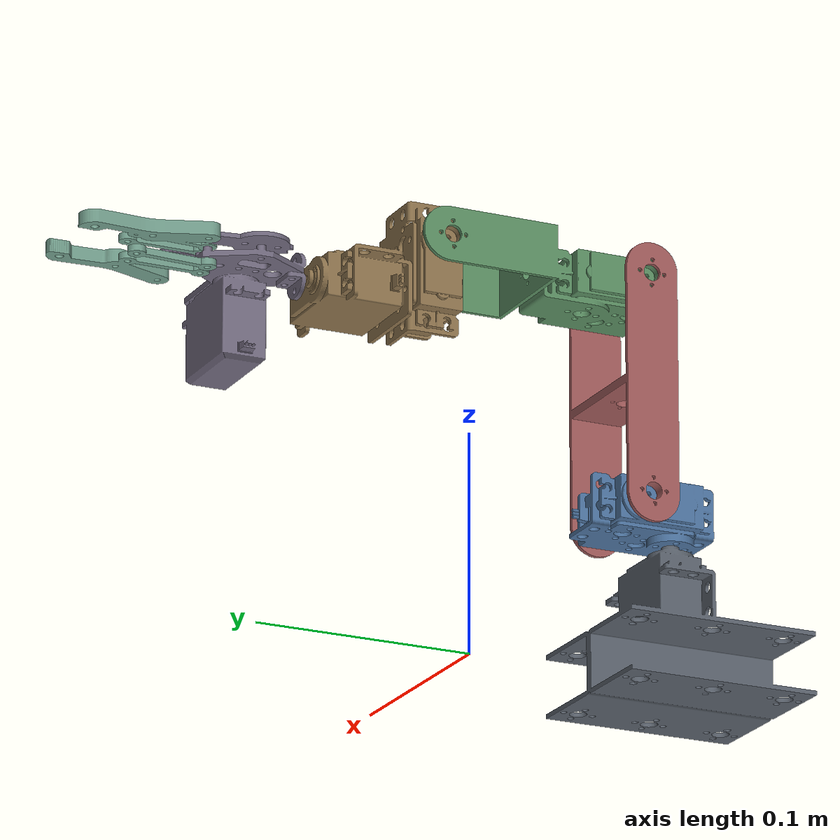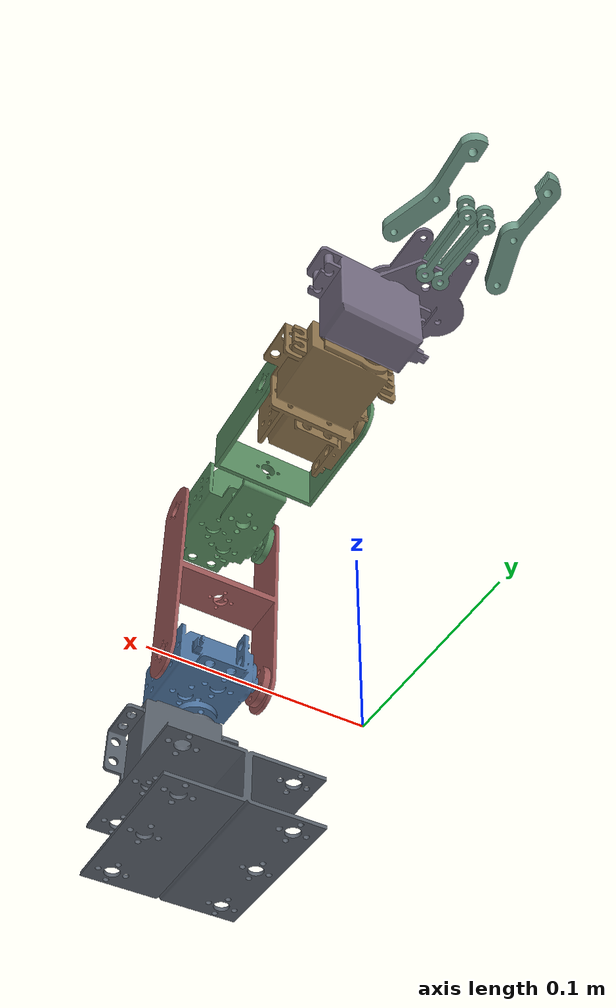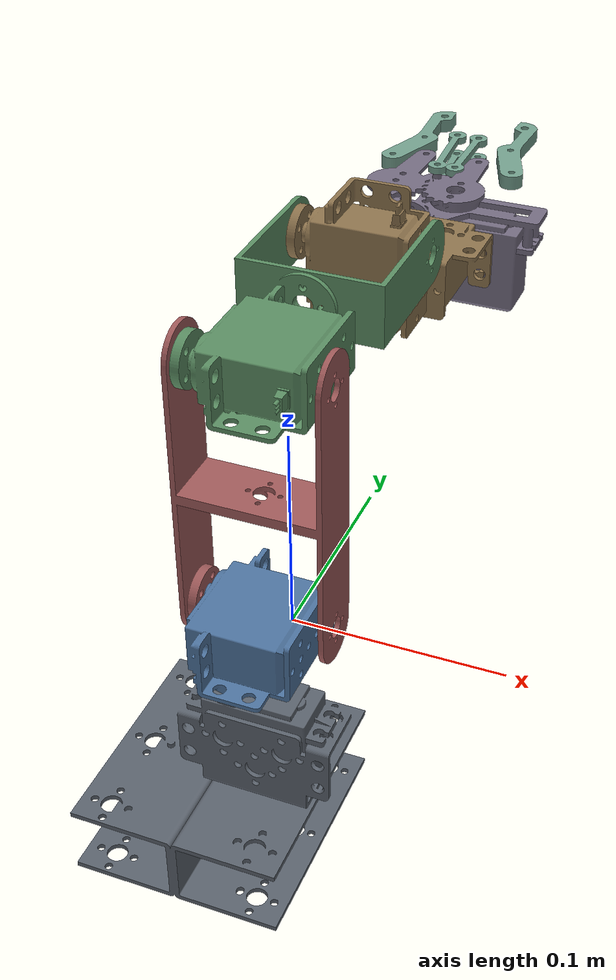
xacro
<?xml version="1.0"?>
<robot name="o5_2_arm" xmlns:xacro="http://www.ros.org/wiki/xacro">

  <!-- 惯量宏。用相对路径 include，这样本文件从任何位置都能单独展开 -->
  <xacro:include filename="inertial_macros.xacro"/>

  <xacro:property name="top_plate_xyz" value=" 0.027037  0.073566  0.111677"/>  <!-- base_plate -> top_plate -->
  <xacro:property name="lower_arm_xyz" value="-0.022766  0.013792 -0.021575"/>  <!-- top_plate  -> lower_arm -->
  <xacro:property name="upper_arm_xyz" value="-0.000001  0.102000  0.000233"/>  <!-- lower_arm  -> upper_arm -->
  <xacro:property name="wrist_xyz"     value="-0.000117  0.001961 -0.097505"/>  <!-- upper_arm  -> wrist -->
  <xacro:property name="claw_base_xyz" value=" 0.023268 -0.021198 -0.060004"/>  <!-- wrist      -> claw_base -->
  <xacro:property name="right_claw_xyz" value="-0.005843  0.006182 -0.082410"/> <!-- claw_base  -> 主动指 -->
  <xacro:property name="left_claw_xyz"  value=" 0.004233  0.006188 -0.082440"/> <!-- claw_base  -> 从动指 -->

  <xacro:property name="top_plate_axis" value="0 1 0"/>   <!-- 底座回转（因整体 +90° about X，等效世界 Z 轴） -->
  <xacro:property name="lower_arm_axis" value="1 0 0"/>
  <xacro:property name="upper_arm_axis" value="-1 0 0"/>  <!-- 与 lower_arm 反向，构成肘部 -->
  <xacro:property name="wrist_axis"     value="1 0 0"/>
  <xacro:property name="claw_base_axis" value="0 0 -1"/>  <!-- 腕部回转 -->
  <!-- 夹爪两指都绕 Y 轴旋转（Y 垂直于「两指分开方向 X」与「手指伸出方向 Z」），
      两指因此都在 XZ 平面内摆动，朝对侧咬合。
      配合 mimic multiplier = -1，两指反向等量转动 = 对称开合。 -->
  <xacro:property name="right_claw_axis" value="0 1 0"/>
  <xacro:property name="left_claw_axis"  value="0 1 0"/>

  <xacro:property name="arm_joint_lower"    value="-1.5708"/>
  <xacro:property name="arm_joint_upper"    value=" 1.5708"/>
  <xacro:property name="arm_joint_effort"   value="10.0"/>
  <xacro:property name="arm_joint_velocity" value="3.0"/>
  <xacro:property name="arm_joint_damping"  value="0.10"/>
  <xacro:property name="arm_joint_friction" value="0.05"/>

  <!-- 夹爪：两个「绕轴旋转」的手指，单位 rad
       注意：这里刻意不用 prismatic（平移）关节，理由见文件末尾「夹爪方案」一节。
       0.0 = 竖直张开位（两指夹持面间距 29.3 mm）
       负方向 = 闭合。限位取 0.90 rad 是算出来的：再转到 0.93 rad 两指面就
       刚好接触，留 ~0.9 mm 余量避免碰撞求解器抖动。 -->
  <xacro:property name="claw_angle_limit" value="0.90"/>
  <xacro:property name="claw_effort"      value="20.0"/>
  <xacro:property name="claw_velocity"    value="0.5"/>

  <!-- base_plate：底板×2 + U 型支架 + 舵机 -->
  <xacro:property name="base_plate_mass" value="0.143933"/>
  <xacro:property name="base_plate_com"  value="0.025064 0.022051 0.112311"/>
  <xacro:property name="base_plate_inertia"
                  value="0.000126612 -0.000019091 -0.000000919 0.000126343 -0.000001582 0.000117666"/>

  <!-- top_plate：U 型支架 + 舵机 + 舵盘 -->
  <xacro:property name="top_plate_mass" value="0.046643"/>
  <xacro:property name="top_plate_com"  value="0.005075 0.011879 -0.011367"/>
  <xacro:property name="top_plate_inertia"
                  value="0.000010852 0.000000018 0.000000001 0.000015620 0.000000108 0.000009424"/>

  <!-- lower_arm：脚板×2 + 舵盘 -->
  <xacro:property name="lower_arm_mass" value="0.046795"/>
  <xacro:property name="lower_arm_com"  value="0.024278 0.050027 0.000189"/>
  <xacro:property name="lower_arm_inertia"
                  value="0.000044988 -0.000001104 -0.000000082 0.000030746 -0.000000095 0.000070850"/>

  <!-- upper_arm：连接件 + U 型支架 + 脚板 + 舵机 + 舵盘 -->
  <xacro:property name="upper_arm_mass" value="0.076498"/>
  <xacro:property name="upper_arm_com"  value="0.026187 -0.001149 -0.029551"/>
  <xacro:property name="upper_arm_inertia"
                  value="0.000075951 0.000000103 -0.000002484 0.000093725 0.000003223 0.000026592"/>

  <!-- wrist：U 型支架×2 + 舵机×2 + 舵盘 -->
  <xacro:property name="wrist_mass" value="0.092393"/>
  <xacro:property name="wrist_com"  value="0.030387 -0.014556 -0.016633"/>
  <xacro:property name="wrist_inertia"
                  value="0.000043585 0.000001605 0.000004130 0.000047614 -0.000006950 0.000029831"/>

  <!-- claw_base：夹爪底座 + 齿轮×2 + 舵机 + 舵盘 + 销 -->
  <xacro:property name="claw_base_mass" value="0.039722"/>
  <xacro:property name="claw_base_com"  value="0.017716 -0.017188 -0.026802"/>
  <xacro:property name="claw_base_inertia"
                  value="0.000010477 0.000002797 -0.000000127 0.000011200 0.000000207 0.000016538"/>

  <!-- 夹爪手指：手指板×2 + 连杆×2 -->
  <xacro:property name="right_claw_mass" value="0.003953"/>
  <xacro:property name="right_claw_com"  value="-0.012800 -0.004503 0.006606"/>
  <xacro:property name="right_claw_inertia"
                  value="0.000001276 -0.000000000 -0.000000131 0.000001545 -0.000000001 0.000000328"/>

  <xacro:property name="left_claw_mass" value="0.003953"/>
  <xacro:property name="left_claw_com"  value="0.013221 -0.004487 0.006543"/>
  <xacro:property name="left_claw_inertia"
                  value="0.000001279 -0.000000000 0.000000108 0.000001525 -0.000000001 0.000000306"/>

  <xacro:property name="right_claw_col_origin" value="-0.015500 -0.004500 -0.013500"/>
  <xacro:property name="left_claw_col_origin"  value=" 0.015700 -0.004500 -0.013500"/>
  <xacro:property name="claw_col_size"         value=" 0.012000  0.012000  0.037000"/>

  <!-- ==========================================================================
       六、材质颜色（RViz 显示用）
       ========================================================================== -->
  <xacro:property name="color_base_plate" value="0.35 0.38 0.42 1.0"/>
  <xacro:property name="color_top_plate"  value="0.30 0.45 0.62 1.0"/>
  <xacro:property name="color_lower_arm"  value="0.62 0.35 0.35 1.0"/>
  <xacro:property name="color_upper_arm"  value="0.35 0.55 0.38 1.0"/>
  <xacro:property name="color_wrist"      value="0.55 0.45 0.30 1.0"/>
  <xacro:property name="color_claw_base"  value="0.45 0.42 0.50 1.0"/>
  <xacro:property name="color_claw"       value="0.45 0.62 0.55 1.0"/>

  <material name="base_plate_color"><color rgba="${color_base_plate}"/></material>
  <material name="top_plate_color"><color rgba="${color_top_plate}"/></material>
  <material name="lower_arm_color"><color rgba="${color_lower_arm}"/></material>
  <material name="upper_arm_color"><color rgba="${color_upper_arm}"/></material>
  <material name="wrist_color"><color rgba="${color_wrist}"/></material>
  <material name="claw_base_color"><color rgba="${color_claw_base}"/></material>
  <material name="claw_color"><color rgba="${color_claw}"/></material>

  <link name="world"/>

  <joint name="world_base_link_joint" type="fixed">
    <parent link="world"/>
    <child  link="base_link"/>
    <origin xyz="0 0 0" rpy="0 0 0"/>
  </joint>

  <link name="base_link"/>

  <joint name="base_plate_joint" type="fixed">
    <parent link="base_link"/>
    <child  link="base_plate"/>
    <origin xyz="0 0 0" rpy="${pi/2} 0 0"/>
  </joint>

  <!-- ==========================================================================
       八、通用宏
       ========================================================================== -->

  <!-- 连杆：mesh 视觉 + mesh 碰撞 + CAD 精确惯量（走 inertial_macros 的 tensor_inertia） -->
  <xacro:macro name="arm_link" params="name mesh_file color mass com inertia">
    <link name="${name}">
      <visual>
        <origin xyz="0 0 0" rpy="0 0 0"/>
        <geometry><mesh filename="package://arm_description/meshes/${mesh_file}"/></geometry>
        <material name="${color}"/>
      </visual>
      <collision>
        <origin xyz="0 0 0" rpy="0 0 0"/>
        <geometry><mesh filename="package://arm_description/meshes/${mesh_file}"/></geometry>
      </collision>
      <xacro:tensor_inertia mass="${mass}" com="${com}" inertia="${inertia}"/>
    </link>
  </xacro:macro>

  <!-- 连杆：mesh 视觉 + box 碰撞（夹爪手指用） -->
  <xacro:macro name="arm_link_boxcollision"
               params="name mesh_file color mass com inertia col_origin col_size">
    <link name="${name}">
      <visual>
        <origin xyz="0 0 0" rpy="0 0 0"/>
        <geometry><mesh filename="package://arm_description/meshes/${mesh_file}"/></geometry>
        <material name="${color}"/>
      </visual>
      <collision>
        <origin xyz="${col_origin}" rpy="0 0 0"/>
        <geometry><box size="${col_size}"/></geometry>
      </collision>
      <xacro:tensor_inertia mass="${mass}" com="${com}" inertia="${inertia}"/>
    </link>
  </xacro:macro>

  <!-- 旋转关节 -->
  <xacro:macro name="arm_revolute_joint" params="name parent child origin axis">
    <joint name="${name}" type="revolute">
      <parent link="${parent}"/>
      <child  link="${child}"/>
      <origin xyz="${origin}" rpy="0 0 0"/>
      <axis xyz="${axis}"/>
      <limit lower="${arm_joint_lower}" upper="${arm_joint_upper}"
             effort="${arm_joint_effort}" velocity="${arm_joint_velocity}"/>
      <dynamics damping="${arm_joint_damping}" friction="${arm_joint_friction}"/>
    </joint>
  </xacro:macro>

  <xacro:arm_link name="base_plate" mesh_file="base_plate.stl" color="base_plate_color"
                  mass="${base_plate_mass}" com="${base_plate_com}" inertia="${base_plate_inertia}"/>
  <xacro:arm_link name="top_plate" mesh_file="top_plate.stl" color="top_plate_color"
                  mass="${top_plate_mass}" com="${top_plate_com}" inertia="${top_plate_inertia}"/>
  <xacro:arm_link name="lower_arm" mesh_file="lower_arm.stl" color="lower_arm_color"
                  mass="${lower_arm_mass}" com="${lower_arm_com}" inertia="${lower_arm_inertia}"/>
  <xacro:arm_link name="upper_arm" mesh_file="upper_arm.stl" color="upper_arm_color"
                  mass="${upper_arm_mass}" com="${upper_arm_com}" inertia="${upper_arm_inertia}"/>
  <xacro:arm_link name="wrist" mesh_file="wrist.stl" color="wrist_color"
                  mass="${wrist_mass}" com="${wrist_com}" inertia="${wrist_inertia}"/>
  <xacro:arm_link name="claw_base" mesh_file="claw_base.stl" color="claw_base_color"
                  mass="${claw_base_mass}" com="${claw_base_com}" inertia="${claw_base_inertia}"/>

  <xacro:arm_link_boxcollision name="right_claw" mesh_file="right_claw.stl" color="claw_color"
                               mass="${right_claw_mass}" com="${right_claw_com}" inertia="${right_claw_inertia}"
                               col_origin="${right_claw_col_origin}" col_size="${claw_col_size}"/>
  <xacro:arm_link_boxcollision name="left_claw" mesh_file="left_claw.stl" color="claw_color"
                               mass="${left_claw_mass}" com="${left_claw_com}" inertia="${left_claw_inertia}"
                               col_origin="${left_claw_col_origin}" col_size="${claw_col_size}"/>

  <!-- ==========================================================================
       十、关节实例
       ========================================================================== -->
  <xacro:arm_revolute_joint name="top_plate_joint" parent="base_plate" child="top_plate"
                            origin="${top_plate_xyz}" axis="${top_plate_axis}"/>
  <xacro:arm_revolute_joint name="lower_arm_joint" parent="top_plate" child="lower_arm"
                            origin="${lower_arm_xyz}" axis="${lower_arm_axis}"/>
  <xacro:arm_revolute_joint name="upper_arm_joint" parent="lower_arm" child="upper_arm"
                            origin="${upper_arm_xyz}" axis="${upper_arm_axis}"/>
  <xacro:arm_revolute_joint name="wrist_joint" parent="upper_arm" child="wrist"
                            origin="${wrist_xyz}" axis="${wrist_axis}"/>
  <xacro:arm_revolute_joint name="claw_base_joint" parent="wrist" child="claw_base"
                            origin="${claw_base_xyz}" axis="${claw_base_axis}"/>

  <!-- 主动指 -->
  <joint name="right_claw_joint" type="revolute">
    <parent link="claw_base"/>
    <child  link="right_claw"/>
    <origin xyz="${right_claw_xyz}" rpy="0 0 0"/>
    <axis xyz="${right_claw_axis}"/>
    <limit lower="-${claw_angle_limit}" upper="0.0"
           effort="${claw_effort}" velocity="${claw_velocity}"/>
    <dynamics damping="${arm_joint_damping}" friction="${arm_joint_friction}"/>
  </joint>

  <!-- 从动指：值 = 主动指 × (-1)，天然对称，不需要单独控制器 -->
  <joint name="left_claw_joint" type="revolute">
    <parent link="claw_base"/>
    <child  link="left_claw"/>
    <origin xyz="${left_claw_xyz}" rpy="0 0 0"/>
    <axis xyz="${left_claw_axis}"/>
    <limit lower="0.0" upper="${claw_angle_limit}"
           effort="${claw_effort}" velocity="${claw_velocity}"/>
    <dynamics damping="${arm_joint_damping}" friction="${arm_joint_friction}"/>
    <mimic joint="right_claw_joint" multiplier="-1" offset="0"/>
  </joint>

  <link name="tcp"/>

  <joint name="tcp_joint" type="fixed">
    <parent link="claw_base"/>
    <child  link="tcp"/>
    <origin xyz="-0.000705 0.001685 -0.095925" rpy="3.141593 0 0"/>
  </joint>

</robot>

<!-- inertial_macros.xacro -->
<robot xmlns:xacro="http://www.ros.org/wiki/xacro">

  <xacro:macro name="box_inertia" params="mass length width height *origin">
    <inertial>
      <xacro:insert_block name="origin"/>
      <mass value="${mass}"/>
      <inertia ixx="${(mass/12) * (width*width + height*height)}" ixy="0.0" ixz="0.0"
               iyy="${(mass/12) * (length*length + height*height)}" iyz="0.0"
               izz="${(mass/12) * (length*length + width*width)}"/>
    </inertial>
  </xacro:macro>

  <xacro:macro name="cylinder_inertia" params="mass length radius *origin">
    <inertial>
      <xacro:insert_block name="origin"/>
      <mass value="${mass}"/>
      <inertia ixx="${(1/12) * mass * (3*radius*radius + length*length)}" ixy="0.0" ixz="0.0"
               iyy="${(1/12) * mass * (3*radius*radius + length*length)}" iyz="0.0"
               izz="${(1/2) * mass * (radius*radius)}"/>
    </inertial>
  </xacro:macro>

  <xacro:macro name="tensor_inertia" params="mass com inertia">
    <inertial>
      <origin xyz="${com}" rpy="0 0 0"/>
      <mass value="${mass}"/>
      <inertia ixx="${inertia.split(' ')[0]}" ixy="${inertia.split(' ')[1]}"
               ixz="${inertia.split(' ')[2]}" iyy="${inertia.split(' ')[3]}"
               iyz="${inertia.split(' ')[4]}" izz="${inertia.split(' ')[5]}"/>
    </inertial>
  </xacro:macro>

</robot>
